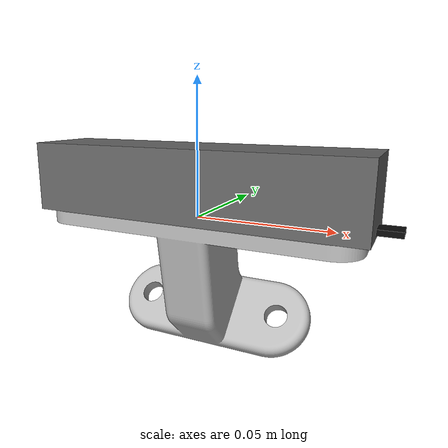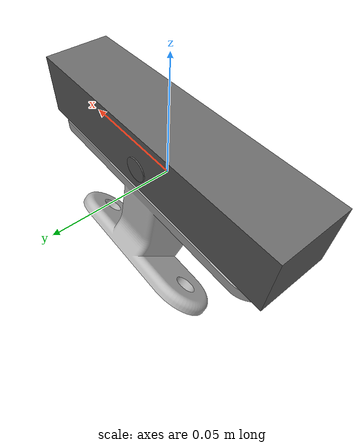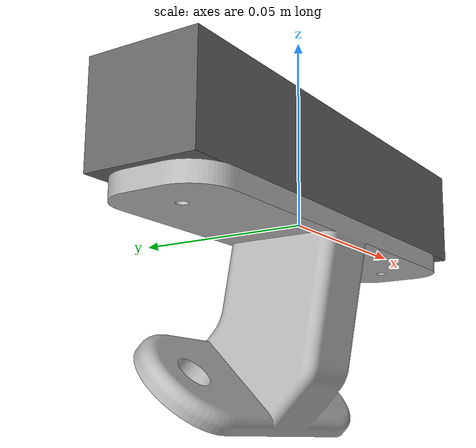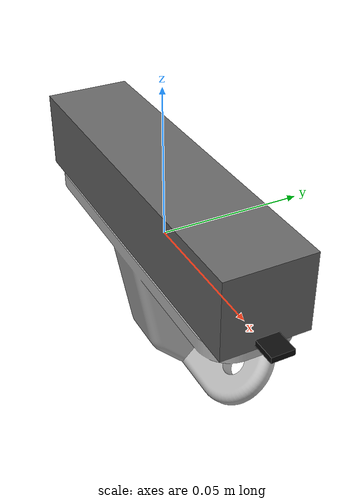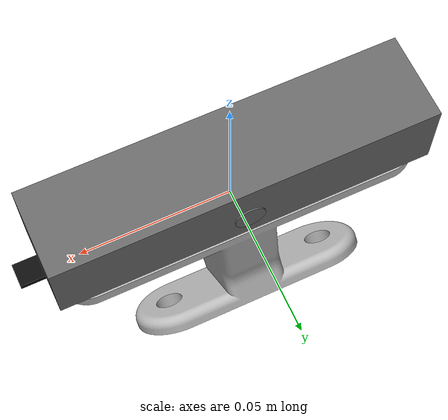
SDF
<?xml version="1.0"?>
<sdf version="1.7">
  <model name="camera_box">
    <link name="base">
      <inertial>
        <pose>0 0 0.025 0 0 0 </pose>
        <mass>0.028</mass>
        <inertia>
          <ixx>1.17e-5</ixx>
          <ixy>0</ixy>
          <ixz>0</ixz>
          <iyy>1.9e-5</iyy>
          <iyz>0</iyz>
          <izz>1.9e-5</izz>
        </inertia>
      </inertial>
      <visual name="base_visual">
        <pose>0 0 0.013 0 0 0</pose>
        <geometry>
          <box>
            <size>.124 .029 .026</size>
          </box>
        </geometry>
        <material>
          <diffuse>.4 .4 .4 1.</diffuse>
        </material>
      </visual>
      <visual name="mount">
        <pose rotation_format="quat_xyzw">0 0.01485922 -0.04193029 -0.271 -0.653  0.271 0.653</pose>
        <geometry>
          <mesh>
            <uri>package://piplup_models/realsense_description/meshes/d455_mount.obj</uri>
          </mesh>
        </geometry>
      </visual>
      <visual name="cable">
        <pose>0.065 0 0.0025 0 0 0</pose>
        <geometry>
          <box>
            <size>.01 .0075 .002</size>
          </box>
        </geometry>
        <material>
          <diffuse>.05 .05 .05 1.</diffuse>
        </material>
      </visual>
      <visual name="tripod_mount">
        <pose>0 0.01 0.01 1.57 0 0</pose>
        <geometry>
          <cylinder>
            <radius>0.005</radius>
            <length>0.01</length>
          </cylinder>
        </geometry>
        <material>
          <diffuse>.4 .4 .4 1.</diffuse>
        </material>
      </visual>
    </link>
    <frame name='mount_frame' attached_to='base'>
      <pose degrees="True">0 0.01485922 -0.04193029 45 0 0</pose>
    </frame>
  </model>
</sdf>
